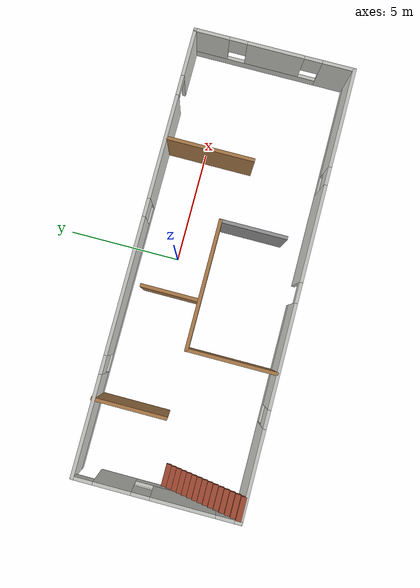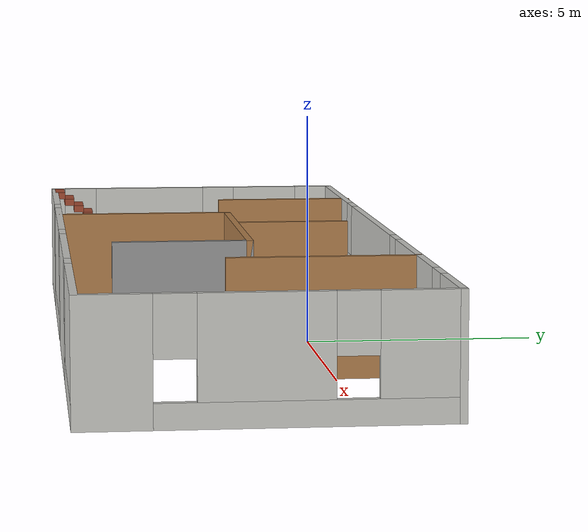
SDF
<?xml version='1.0'?>
<sdf version='1.7'>
  <model name='custom.world'>
    <pose>-0.155644 -1.8092 0 0 -0 0</pose>
    <link name='Stairs_0'>
      <visual name='Stairs_0_Visual_0'>
        <pose>-9.24082 -0.17582 0.083333 0 -0 0</pose>
        <geometry>
          <box>
            <size>1 0.233333 0.166667</size>
          </box>
        </geometry>
        <material>
          <script>
            <uri>file://media/materials/scripts/gazebo.material</uri>
            <name>Gazebo/Bricks</name>
          </script>
          <ambient>1 1 1 1</ambient>
        </material>
        <meta>
          <layer>0</layer>
        </meta>
      </visual>
      <collision name='Stairs_0_Collision_0'>
        <geometry>
          <box>
            <size>1 0.233333 0.166667</size>
          </box>
        </geometry>
        <pose>-9.24082 -0.17582 0.083333 0 -0 0</pose>
      </collision>
      <visual name='Stairs_0_Visual_1'>
        <pose>-9.24082 -0.409153 0.25 0 -0 0</pose>
        <geometry>
          <box>
            <size>1 0.233333 0.166667</size>
          </box>
        </geometry>
        <material>
          <script>
            <uri>file://media/materials/scripts/gazebo.material</uri>
            <name>Gazebo/Bricks</name>
          </script>
          <ambient>1 1 1 1</ambient>
        </material>
        <meta>
          <layer>0</layer>
        </meta>
      </visual>
      <collision name='Stairs_0_Collision_1'>
        <geometry>
          <box>
            <size>1 0.233333 0.166667</size>
          </box>
        </geometry>
        <pose>-9.24082 -0.409153 0.25 0 -0 0</pose>
      </collision>
      <visual name='Stairs_0_Visual_2'>
        <pose>-9.24082 -0.642487 0.416667 0 -0 0</pose>
        <geometry>
          <box>
            <size>1 0.233333 0.166667</size>
          </box>
        </geometry>
        <material>
          <script>
            <uri>file://media/materials/scripts/gazebo.material</uri>
            <name>Gazebo/Bricks</name>
          </script>
          <ambient>1 1 1 1</ambient>
        </material>
        <meta>
          <layer>0</layer>
        </meta>
      </visual>
      <collision name='Stairs_0_Collision_2'>
        <geometry>
          <box>
            <size>1 0.233333 0.166667</size>
          </box>
        </geometry>
        <pose>-9.24082 -0.642487 0.416667 0 -0 0</pose>
      </collision>
      <visual name='Stairs_0_Visual_3'>
        <pose>-9.24082 -0.87582 0.583333 0 -0 0</pose>
        <geometry>
          <box>
            <size>1 0.233333 0.166667</size>
          </box>
        </geometry>
        <material>
          <script>
            <uri>file://media/materials/scripts/gazebo.material</uri>
            <name>Gazebo/Bricks</name>
          </script>
          <ambient>1 1 1 1</ambient>
        </material>
        <meta>
          <layer>0</layer>
        </meta>
      </visual>
      <collision name='Stairs_0_Collision_3'>
        <geometry>
          <box>
            <size>1 0.233333 0.166667</size>
          </box>
        </geometry>
        <pose>-9.24082 -0.87582 0.583333 0 -0 0</pose>
      </collision>
      <visual name='Stairs_0_Visual_4'>
        <pose>-9.24082 -1.10915 0.75 0 -0 0</pose>
        <geometry>
          <box>
            <size>1 0.233333 0.166667</size>
          </box>
        </geometry>
        <material>
          <script>
            <uri>file://media/materials/scripts/gazebo.material</uri>
            <name>Gazebo/Bricks</name>
          </script>
          <ambient>1 1 1 1</ambient>
        </material>
        <meta>
          <layer>0</layer>
        </meta>
      </visual>
      <collision name='Stairs_0_Collision_4'>
        <geometry>
          <box>
            <size>1 0.233333 0.166667</size>
          </box>
        </geometry>
        <pose>-9.24082 -1.10915 0.75 0 -0 0</pose>
      </collision>
      <visual name='Stairs_0_Visual_5'>
        <pose>-9.24082 -1.34249 0.916667 0 -0 0</pose>
        <geometry>
          <box>
            <size>1 0.233333 0.166667</size>
          </box>
        </geometry>
        <material>
          <script>
            <uri>file://media/materials/scripts/gazebo.material</uri>
            <name>Gazebo/Bricks</name>
          </script>
          <ambient>1 1 1 1</ambient>
        </material>
        <meta>
          <layer>0</layer>
        </meta>
      </visual>
      <collision name='Stairs_0_Collision_5'>
        <geometry>
          <box>
            <size>1 0.233333 0.166667</size>
          </box>
        </geometry>
        <pose>-9.24082 -1.34249 0.916667 0 -0 0</pose>
      </collision>
      <visual name='Stairs_0_Visual_6'>
        <pose>-9.24082 -1.57582 1.08333 0 -0 0</pose>
        <geometry>
          <box>
            <size>1 0.233333 0.166667</size>
          </box>
        </geometry>
        <material>
          <script>
            <uri>file://media/materials/scripts/gazebo.material</uri>
            <name>Gazebo/Bricks</name>
          </script>
          <ambient>1 1 1 1</ambient>
        </material>
        <meta>
          <layer>0</layer>
        </meta>
      </visual>
      <collision name='Stairs_0_Collision_6'>
        <geometry>
          <box>
            <size>1 0.233333 0.166667</size>
          </box>
        </geometry>
        <pose>-9.24082 -1.57582 1.08333 0 -0 0</pose>
      </collision>
      <visual name='Stairs_0_Visual_7'>
        <pose>-9.24082 -1.80915 1.25 0 -0 0</pose>
        <geometry>
          <box>
            <size>1 0.233333 0.166667</size>
          </box>
        </geometry>
        <material>
          <script>
            <uri>file://media/materials/scripts/gazebo.material</uri>
            <name>Gazebo/Bricks</name>
          </script>
          <ambient>1 1 1 1</ambient>
        </material>
        <meta>
          <layer>0</layer>
        </meta>
      </visual>
      <collision name='Stairs_0_Collision_7'>
        <geometry>
          <box>
            <size>1 0.233333 0.166667</size>
          </box>
        </geometry>
        <pose>-9.24082 -1.80915 1.25 0 -0 0</pose>
      </collision>
      <visual name='Stairs_0_Visual_8'>
        <pose>-9.24082 -2.04249 1.41667 0 -0 0</pose>
        <geometry>
          <box>
            <size>1 0.233333 0.166667</size>
          </box>
        </geometry>
        <material>
          <script>
            <uri>file://media/materials/scripts/gazebo.material</uri>
            <name>Gazebo/Bricks</name>
          </script>
          <ambient>1 1 1 1</ambient>
        </material>
        <meta>
          <layer>0</layer>
        </meta>
      </visual>
      <collision name='Stairs_0_Collision_8'>
        <geometry>
          <box>
            <size>1 0.233333 0.166667</size>
          </box>
        </geometry>
        <pose>-9.24082 -2.04249 1.41667 0 -0 0</pose>
      </collision>
      <visual name='Stairs_0_Visual_9'>
        <pose>-9.24082 -2.27582 1.58333 0 -0 0</pose>
        <geometry>
          <box>
            <size>1 0.233333 0.166667</size>
          </box>
        </geometry>
        <material>
          <script>
            <uri>file://media/materials/scripts/gazebo.material</uri>
            <name>Gazebo/Bricks</name>
          </script>
          <ambient>1 1 1 1</ambient>
        </material>
        <meta>
          <layer>0</layer>
        </meta>
      </visual>
      <collision name='Stairs_0_Collision_9'>
        <geometry>
          <box>
            <size>1 0.233333 0.166667</size>
          </box>
        </geometry>
        <pose>-9.24082 -2.27582 1.58333 0 -0 0</pose>
      </collision>
      <visual name='Stairs_0_Visual_10'>
        <pose>-9.24082 -2.50915 1.75 0 -0 0</pose>
        <geometry>
          <box>
            <size>1 0.233333 0.166667</size>
          </box>
        </geometry>
        <material>
          <script>
            <uri>file://media/materials/scripts/gazebo.material</uri>
            <name>Gazebo/Bricks</name>
          </script>
          <ambient>1 1 1 1</ambient>
        </material>
        <meta>
          <layer>0</layer>
        </meta>
      </visual>
      <collision name='Stairs_0_Collision_10'>
        <geometry>
          <box>
            <size>1 0.233333 0.166667</size>
          </box>
        </geometry>
        <pose>-9.24082 -2.50915 1.75 0 -0 0</pose>
      </collision>
      <visual name='Stairs_0_Visual_11'>
        <pose>-9.24082 -2.74249 1.91667 0 -0 0</pose>
        <geometry>
          <box>
            <size>1 0.233333 0.166667</size>
          </box>
        </geometry>
        <material>
          <script>
            <uri>file://media/materials/scripts/gazebo.material</uri>
            <name>Gazebo/Bricks</name>
          </script>
          <ambient>1 1 1 1</ambient>
        </material>
        <meta>
          <layer>0</layer>
        </meta>
      </visual>
      <collision name='Stairs_0_Collision_11'>
        <geometry>
          <box>
            <size>1 0.233333 0.166667</size>
          </box>
        </geometry>
        <pose>-9.24082 -2.74249 1.91667 0 -0 0</pose>
      </collision>
      <visual name='Stairs_0_Visual_12'>
        <pose>-9.24082 -2.97582 2.08333 0 -0 0</pose>
        <geometry>
          <box>
            <size>1 0.233333 0.166667</size>
          </box>
        </geometry>
        <material>
          <script>
            <uri>file://media/materials/scripts/gazebo.material</uri>
            <name>Gazebo/Bricks</name>
          </script>
          <ambient>1 1 1 1</ambient>
        </material>
        <meta>
          <layer>0</layer>
        </meta>
      </visual>
      <collision name='Stairs_0_Collision_12'>
        <geometry>
          <box>
            <size>1 0.233333 0.166667</size>
          </box>
        </geometry>
        <pose>-9.24082 -2.97582 2.08333 0 -0 0</pose>
      </collision>
      <visual name='Stairs_0_Visual_13'>
        <pose>-9.24082 -3.20915 2.25 0 -0 0</pose>
        <geometry>
          <box>
            <size>1 0.233333 0.166667</size>
          </box>
        </geometry>
        <material>
          <script>
            <uri>file://media/materials/scripts/gazebo.material</uri>
            <name>Gazebo/Bricks</name>
          </script>
          <ambient>1 1 1 1</ambient>
        </material>
        <meta>
          <layer>0</layer>
        </meta>
      </visual>
      <collision name='Stairs_0_Collision_13'>
        <geometry>
          <box>
            <size>1 0.233333 0.166667</size>
          </box>
        </geometry>
        <pose>-9.24082 -3.20915 2.25 0 -0 0</pose>
      </collision>
      <visual name='Stairs_0_Visual_14'>
        <pose>-9.24082 -3.44249 2.41667 0 -0 0</pose>
        <geometry>
          <box>
            <size>1 0.233333 0.166667</size>
          </box>
        </geometry>
        <material>
          <script>
            <uri>file://media/materials/scripts/gazebo.material</uri>
            <name>Gazebo/Bricks</name>
          </script>
          <ambient>1 1 1 1</ambient>
        </material>
        <meta>
          <layer>0</layer>
        </meta>
      </visual>
      <collision name='Stairs_0_Collision_14'>
        <geometry>
          <box>
            <size>1 0.233333 0.166667</size>
          </box>
        </geometry>
        <pose>-9.24082 -3.44249 2.41667 0 -0 0</pose>
      </collision>
    </link>
    <link name='Wall_11'>
      <pose>-9.8 -0.017848 0 0 -0 -1.5708</pose>
      <visual name='Wall_11_Visual_0'>
        <pose>-3.60296 0 1.25 0 -0 0</pose>
        <geometry>
          <box>
            <size>0.044075 0.15 2.5</size>
          </box>
        </geometry>
        <material>
          <script>
            <uri>file://media/materials/scripts/gazebo.material</uri>
            <name>Gazebo/CeilingTiled</name>
          </script>
          <ambient>0.921569 0.807843 0.615686 1</ambient>
        </material>
        <meta>
          <layer>0</layer>
        </meta>
      </visual>
      <collision name='Wall_11_Collision_0'>
        <geometry>
          <box>
            <size>0.044075 0.15 2.5</size>
          </box>
        </geometry>
        <pose>-3.60296 0 1.25 0 -0 0</pose>
      </collision>
      <visual name='Wall_11_Visual_1'>
        <pose>-1.87537 0 1.25 0 -0 0</pose>
        <geometry>
          <box>
            <size>1.61112 0.15 2.5</size>
          </box>
        </geometry>
        <material>
          <script>
            <uri>file://media/materials/scripts/gazebo.material</uri>
            <name>Gazebo/CeilingTiled</name>
          </script>
          <ambient>0.921569 0.807843 0.615686 1</ambient>
        </material>
        <meta>
          <layer>0</layer>
        </meta>
      </visual>
      <collision name='Wall_11_Collision_1'>
        <geometry>
          <box>
            <size>1.61112 0.15 2.5</size>
          </box>
        </geometry>
        <pose>-1.87537 0 1.25 0 -0 0</pose>
      </collision>
      <visual name='Wall_11_Visual_2'>
        <pose>1.2776 0 0.25 0 -0 0</pose>
        <geometry>
          <box>
            <size>4.69481 0.15 0.5</size>
          </box>
        </geometry>
        <material>
          <script>
            <uri>file://media/materials/scripts/gazebo.material</uri>
            <name>Gazebo/CeilingTiled</name>
          </script>
          <ambient>0.921569 0.807843 0.615686 1</ambient>
        </material>
        <meta>
          <layer>0</layer>
        </meta>
      </visual>
      <collision name='Wall_11_Collision_2'>
        <geometry>
          <box>
            <size>4.69481 0.15 0.5</size>
          </box>
        </geometry>
        <pose>1.2776 0 0.25 0 -0 0</pose>
      </collision>
      <visual name='Wall_11_Visual_3'>
        <pose>1.10915 0 1.5 0 -0 0</pose>
        <geometry>
          <box>
            <size>2.75792 0.15 2</size>
          </box>
        </geometry>
        <material>
          <script>
            <uri>file://media/materials/scripts/gazebo.material</uri>
            <name>Gazebo/CeilingTiled</name>
          </script>
          <ambient>0.921569 0.807843 0.615686 1</ambient>
        </material>
        <meta>
          <layer>0</layer>
        </meta>
      </visual>
      <collision name='Wall_11_Collision_3'>
        <geometry>
          <box>
            <size>2.75792 0.15 2</size>
          </box>
        </geometry>
        <pose>1.10915 0 1.5 0 -0 0</pose>
      </collision>
      <visual name='Wall_11_Visual_4'>
        <pose>3.45655 0 1.5 0 -0 0</pose>
        <geometry>
          <box>
            <size>0.336893 0.15 2</size>
          </box>
        </geometry>
        <material>
          <script>
            <uri>file://media/materials/scripts/gazebo.material</uri>
            <name>Gazebo/CeilingTiled</name>
          </script>
          <ambient>0.921569 0.807843 0.615686 1</ambient>
        </material>
        <meta>
          <layer>0</layer>
        </meta>
      </visual>
      <collision name='Wall_11_Collision_4'>
        <geometry>
          <box>
            <size>0.336893 0.15 2</size>
          </box>
        </geometry>
        <pose>3.45655 0 1.5 0 -0 0</pose>
      </collision>
      <visual name='Wall_11_Visual_5'>
        <pose>-0.66981 0 1.9 0 -0 0</pose>
        <geometry>
          <box>
            <size>0.8 0.15 1.2</size>
          </box>
        </geometry>
        <material>
          <script>
            <uri>file://media/materials/scripts/gazebo.material</uri>
            <name>Gazebo/CeilingTiled</name>
          </script>
          <ambient>0.921569 0.807843 0.615686 1</ambient>
        </material>
        <meta>
          <layer>0</layer>
        </meta>
      </visual>
      <collision name='Wall_11_Collision_5'>
        <geometry>
          <box>
            <size>0.8 0.15 1.2</size>
          </box>
        </geometry>
        <pose>-0.66981 0 1.9 0 -0 0</pose>
      </collision>
      <visual name='Wall_11_Visual_6'>
        <pose>2.88811 0 1.9 0 -0 0</pose>
        <geometry>
          <box>
            <size>0.8 0.15 1.2</size>
          </box>
        </geometry>
        <material>
          <script>
            <uri>file://media/materials/scripts/gazebo.material</uri>
            <name>Gazebo/CeilingTiled</name>
          </script>
          <ambient>0.921569 0.807843 0.615686 1</ambient>
        </material>
        <meta>
          <layer>0</layer>
        </meta>
      </visual>
      <collision name='Wall_11_Collision_6'>
        <geometry>
          <box>
            <size>0.8 0.15 1.2</size>
          </box>
        </geometry>
        <pose>2.88811 0 1.9 0 -0 0</pose>
      </collision>
      <visual name='Wall_11_Visual_7'>
        <pose>-3.13092 0 2.25 0 -0 0</pose>
        <geometry>
          <box>
            <size>0.9 0.15 0.5</size>
          </box>
        </geometry>
        <material>
          <script>
            <uri>file://media/materials/scripts/gazebo.material</uri>
            <name>Gazebo/CeilingTiled</name>
          </script>
          <ambient>0.921569 0.807843 0.615686 1</ambient>
        </material>
        <meta>
          <layer>0</layer>
        </meta>
      </visual>
      <collision name='Wall_11_Collision_7'>
        <geometry>
          <box>
            <size>0.9 0.15 0.5</size>
          </box>
        </geometry>
        <pose>-3.13092 0 2.25 0 -0 0</pose>
      </collision>
    </link>
    <link name='Wall_12'>
      <pose>-0 -3.56785 0 0 -0 0</pose>
      <visual name='Wall_12_Visual_0'>
        <pose>-7.8987 0 1.25 0 -0 0</pose>
        <geometry>
          <box>
            <size>3.95261 0.15 2.5</size>
          </box>
        </geometry>
        <material>
          <script>
            <uri>file://media/materials/scripts/gazebo.material</uri>
            <name>Gazebo/CeilingTiled</name>
          </script>
          <ambient>0.921569 0.807843 0.615686 1</ambient>
        </material>
        <meta>
          <layer>0</layer>
        </meta>
      </visual>
      <collision name='Wall_12_Collision_0'>
        <geometry>
          <box>
            <size>3.95261 0.15 2.5</size>
          </box>
        </geometry>
        <pose>-7.8987 0 1.25 0 -0 0</pose>
      </collision>
      <visual name='Wall_12_Visual_1'>
        <pose>2.44773 0 1.25 0 -0 0</pose>
        <geometry>
          <box>
            <size>4.28624 0.15 2.5</size>
          </box>
        </geometry>
        <material>
          <script>
            <uri>file://media/materials/scripts/gazebo.material</uri>
            <name>Gazebo/CeilingTiled</name>
          </script>
          <ambient>0.921569 0.807843 0.615686 1</ambient>
        </material>
        <meta>
          <layer>0</layer>
        </meta>
      </visual>
      <collision name='Wall_12_Collision_1'>
        <geometry>
          <box>
            <size>4.28624 0.15 2.5</size>
          </box>
        </geometry>
        <pose>2.44773 0 1.25 0 -0 0</pose>
      </collision>
      <visual name='Wall_12_Visual_2'>
        <pose>-3.25889 0 0.25 0 -0 0</pose>
        <geometry>
          <box>
            <size>5.327 0.15 0.5</size>
          </box>
        </geometry>
        <material>
          <script>
            <uri>file://media/materials/scripts/gazebo.material</uri>
            <name>Gazebo/CeilingTiled</name>
          </script>
          <ambient>0.921569 0.807843 0.615686 1</ambient>
        </material>
        <meta>
          <layer>0</layer>
        </meta>
      </visual>
      <collision name='Wall_12_Collision_2'>
        <geometry>
          <box>
            <size>5.327 0.15 0.5</size>
          </box>
        </geometry>
        <pose>-3.25889 0 0.25 0 -0 0</pose>
      </collision>
      <visual name='Wall_12_Visual_3'>
        <pose>7.23292 0 0.25 0 -0 0</pose>
        <geometry>
          <box>
            <size>5.28415 0.15 0.5</size>
          </box>
        </geometry>
        <material>
          <script>
            <uri>file://media/materials/scripts/gazebo.material</uri>
            <name>Gazebo/CeilingTiled</name>
          </script>
          <ambient>0.921569 0.807843 0.615686 1</ambient>
        </material>
        <meta>
          <layer>0</layer>
        </meta>
      </visual>
      <collision name='Wall_12_Collision_3'>
        <geometry>
          <box>
            <size>5.28415 0.15 0.5</size>
          </box>
        </geometry>
        <pose>7.23292 0 0.25 0 -0 0</pose>
      </collision>
      <visual name='Wall_12_Visual_4'>
        <pose>-2.85889 0 1.5 0 -0 0</pose>
        <geometry>
          <box>
            <size>4.527 0.15 2</size>
          </box>
        </geometry>
        <material>
          <script>
            <uri>file://media/materials/scripts/gazebo.material</uri>
            <name>Gazebo/CeilingTiled</name>
          </script>
          <ambient>0.921569 0.807843 0.615686 1</ambient>
        </material>
        <meta>
          <layer>0</layer>
        </meta>
      </visual>
      <collision name='Wall_12_Collision_4'>
        <geometry>
          <box>
            <size>4.527 0.15 2</size>
          </box>
        </geometry>
        <pose>-2.85889 0 1.5 0 -0 0</pose>
      </collision>
      <visual name='Wall_12_Visual_5'>
        <pose>-2.85889 0 1.5 0 -0 0</pose>
        <geometry>
          <box>
            <size>4.527 0.15 2</size>
          </box>
        </geometry>
        <material>
          <script>
            <uri>file://media/materials/scripts/gazebo.material</uri>
            <name>Gazebo/CeilingTiled</name>
          </script>
          <ambient>0.921569 0.807843 0.615686 1</ambient>
        </material>
        <meta>
          <layer>0</layer>
        </meta>
      </visual>
      <collision name='Wall_12_Collision_5'>
        <geometry>
          <box>
            <size>4.527 0.15 2</size>
          </box>
        </geometry>
        <pose>-2.85889 0 1.5 0 -0 0</pose>
      </collision>
      <visual name='Wall_12_Visual_6'>
        <pose>7.63292 0 1.5 0 -0 0</pose>
        <geometry>
          <box>
            <size>4.48415 0.15 2</size>
          </box>
        </geometry>
        <material>
          <script>
            <uri>file://media/materials/scripts/gazebo.material</uri>
            <name>Gazebo/CeilingTiled</name>
          </script>
          <ambient>0.921569 0.807843 0.615686 1</ambient>
        </material>
        <meta>
          <layer>0</layer>
        </meta>
      </visual>
      <collision name='Wall_12_Collision_6'>
        <geometry>
          <box>
            <size>4.48415 0.15 2</size>
          </box>
        </geometry>
        <pose>7.63292 0 1.5 0 -0 0</pose>
      </collision>
      <visual name='Wall_12_Visual_7'>
        <pose>-5.52239 0 1.9 0 -0 0</pose>
        <geometry>
          <box>
            <size>0.8 0.15 1.2</size>
          </box>
        </geometry>
        <material>
          <script>
            <uri>file://media/materials/scripts/gazebo.material</uri>
            <name>Gazebo/CeilingTiled</name>
          </script>
          <ambient>0.921569 0.807843 0.615686 1</ambient>
        </material>
        <meta>
          <layer>0</layer>
        </meta>
      </visual>
      <collision name='Wall_12_Collision_7'>
        <geometry>
          <box>
            <size>0.8 0.15 1.2</size>
          </box>
        </geometry>
        <pose>-5.52239 0 1.9 0 -0 0</pose>
      </collision>
      <visual name='Wall_12_Visual_8'>
        <pose>4.99085 0 1.9 0 -0 0</pose>
        <geometry>
          <box>
            <size>0.8 0.15 1.2</size>
          </box>
        </geometry>
        <material>
          <script>
            <uri>file://media/materials/scripts/gazebo.material</uri>
            <name>Gazebo/CeilingTiled</name>
          </script>
          <ambient>0.921569 0.807843 0.615686 1</ambient>
        </material>
        <meta>
          <layer>0</layer>
        </meta>
      </visual>
      <collision name='Wall_12_Collision_8'>
        <geometry>
          <box>
            <size>0.8 0.15 1.2</size>
          </box>
        </geometry>
        <pose>4.99085 0 1.9 0 -0 0</pose>
      </collision>
      <visual name='Wall_12_Visual_9'>
        <pose>-0.145393 0 2.25 0 -0 0</pose>
        <geometry>
          <box>
            <size>0.9 0.15 0.5</size>
          </box>
        </geometry>
        <material>
          <script>
            <uri>file://media/materials/scripts/gazebo.material</uri>
            <name>Gazebo/CeilingTiled</name>
          </script>
          <ambient>0.921569 0.807843 0.615686 1</ambient>
        </material>
        <meta>
          <layer>0</layer>
        </meta>
      </visual>
      <collision name='Wall_12_Collision_9'>
        <geometry>
          <box>
            <size>0.9 0.15 0.5</size>
          </box>
        </geometry>
        <pose>-0.145393 0 2.25 0 -0 0</pose>
      </collision>
      <visual name='Wall_12_Visual_10'>
        <pose>-0.145393 0 2.25 0 -0 0</pose>
        <geometry>
          <box>
            <size>0.9 0.15 0.5</size>
          </box>
        </geometry>
        <material>
          <script>
            <uri>file://media/materials/scripts/gazebo.material</uri>
            <name>Gazebo/CeilingTiled</name>
          </script>
          <ambient>0.921569 0.807843 0.615686 1</ambient>
        </material>
        <meta>
          <layer>0</layer>
        </meta>
      </visual>
      <collision name='Wall_12_Collision_10'>
        <geometry>
          <box>
            <size>0.9 0.15 0.5</size>
          </box>
        </geometry>
        <pose>-0.145393 0 2.25 0 -0 0</pose>
      </collision>
    </link>
    <link name='Wall_13'>
      <pose>9.8 -0.017848 0 0 -0 1.5708</pose>
      <visual name='Wall_13_Visual_0'>
        <pose>-2.8814 0 1.25 0 -0 0</pose>
        <geometry>
          <box>
            <size>1.4872 0.15 2.5</size>
          </box>
        </geometry>
        <material>
          <script>
            <uri>file://media/materials/scripts/gazebo.material</uri>
            <name>Gazebo/CeilingTiled</name>
          </script>
          <ambient>0.921569 0.807843 0.615686 1</ambient>
        </material>
        <meta>
          <layer>0</layer>
        </meta>
      </visual>
      <collision name='Wall_13_Collision_0'>
        <geometry>
          <box>
            <size>1.4872 0.15 2.5</size>
          </box>
        </geometry>
        <pose>-2.8814 0 1.25 0 -0 0</pose>
      </collision>
      <visual name='Wall_13_Visual_1'>
        <pose>0.743599 0 0.25 0 -0 0</pose>
        <geometry>
          <box>
            <size>5.7628 0.15 0.5</size>
          </box>
        </geometry>
        <material>
          <script>
            <uri>file://media/materials/scripts/gazebo.material</uri>
            <name>Gazebo/CeilingTiled</name>
          </script>
          <ambient>0.921569 0.807843 0.615686 1</ambient>
        </material>
        <meta>
          <layer>0</layer>
        </meta>
      </visual>
      <collision name='Wall_13_Collision_1'>
        <geometry>
          <box>
            <size>5.7628 0.15 0.5</size>
          </box>
        </geometry>
        <pose>0.743599 0 0.25 0 -0 0</pose>
      </collision>
      <visual name='Wall_13_Visual_2'>
        <pose>-0.06585 0 1.5 0 -0 0</pose>
        <geometry>
          <box>
            <size>2.54391 0.15 2</size>
          </box>
        </geometry>
        <material>
          <script>
            <uri>file://media/materials/scripts/gazebo.material</uri>
            <name>Gazebo/CeilingTiled</name>
          </script>
          <ambient>0.921569 0.807843 0.615686 1</ambient>
        </material>
        <meta>
          <layer>0</layer>
        </meta>
      </visual>
      <collision name='Wall_13_Collision_2'>
        <geometry>
          <box>
            <size>2.54391 0.15 2</size>
          </box>
        </geometry>
        <pose>-0.06585 0 1.5 0 -0 0</pose>
      </collision>
      <visual name='Wall_13_Visual_3'>
        <pose>2.81555 0 1.5 0 -0 0</pose>
        <geometry>
          <box>
            <size>1.6189 0.15 2</size>
          </box>
        </geometry>
        <material>
          <script>
            <uri>file://media/materials/scripts/gazebo.material</uri>
            <name>Gazebo/CeilingTiled</name>
          </script>
          <ambient>0.921569 0.807843 0.615686 1</ambient>
        </material>
        <meta>
          <layer>0</layer>
        </meta>
      </visual>
      <collision name='Wall_13_Collision_3'>
        <geometry>
          <box>
            <size>1.6189 0.15 2</size>
          </box>
        </geometry>
        <pose>2.81555 0 1.5 0 -0 0</pose>
      </collision>
      <visual name='Wall_13_Visual_4'>
        <pose>-1.7378 0 1.9 0 -0 0</pose>
        <geometry>
          <box>
            <size>0.8 0.15 1.2</size>
          </box>
        </geometry>
        <material>
          <script>
            <uri>file://media/materials/scripts/gazebo.material</uri>
            <name>Gazebo/CeilingTiled</name>
          </script>
          <ambient>0.921569 0.807843 0.615686 1</ambient>
        </material>
        <meta>
          <layer>0</layer>
        </meta>
      </visual>
      <collision name='Wall_13_Collision_4'>
        <geometry>
          <box>
            <size>0.8 0.15 1.2</size>
          </box>
        </geometry>
        <pose>-1.7378 0 1.9 0 -0 0</pose>
      </collision>
      <visual name='Wall_13_Visual_5'>
        <pose>1.6061 0 1.9 0 -0 0</pose>
        <geometry>
          <box>
            <size>0.8 0.15 1.2</size>
          </box>
        </geometry>
        <material>
          <script>
            <uri>file://media/materials/scripts/gazebo.material</uri>
            <name>Gazebo/CeilingTiled</name>
          </script>
          <ambient>0.921569 0.807843 0.615686 1</ambient>
        </material>
        <meta>
          <layer>0</layer>
        </meta>
      </visual>
      <collision name='Wall_13_Collision_5'>
        <geometry>
          <box>
            <size>0.8 0.15 1.2</size>
          </box>
        </geometry>
        <pose>1.6061 0 1.9 0 -0 0</pose>
      </collision>
    </link>
    <link name='Wall_14'>
      <pose>-0 3.53215 0 0 -0 3.14159</pose>
      <visual name='Wall_14_Visual_0'>
        <pose>-8.78148 0 1.25 0 -0 0</pose>
        <geometry>
          <box>
            <size>2.18705 0.15 2.5</size>
          </box>
        </geometry>
        <material>
          <script>
            <uri>file://media/materials/scripts/gazebo.material</uri>
            <name>Gazebo/CeilingTiled</name>
          </script>
          <ambient>0.921569 0.807843 0.615686 1</ambient>
        </material>
        <meta>
          <layer>0</layer>
        </meta>
      </visual>
      <collision name='Wall_14_Collision_0'>
        <geometry>
          <box>
            <size>2.18705 0.15 2.5</size>
          </box>
        </geometry>
        <pose>-8.78148 0 1.25 0 -0 0</pose>
      </collision>
      <visual name='Wall_14_Visual_1'>
        <pose>-4.45757 0 1.25 0 -0 0</pose>
        <geometry>
          <box>
            <size>4.66076 0.15 2.5</size>
          </box>
        </geometry>
        <material>
          <script>
            <uri>file://media/materials/scripts/gazebo.material</uri>
            <name>Gazebo/CeilingTiled</name>
          </script>
          <ambient>0.921569 0.807843 0.615686 1</ambient>
        </material>
        <meta>
          <layer>0</layer>
        </meta>
      </visual>
      <collision name='Wall_14_Collision_1'>
        <geometry>
          <box>
            <size>4.66076 0.15 2.5</size>
          </box>
        </geometry>
        <pose>-4.45757 0 1.25 0 -0 0</pose>
      </collision>
      <visual name='Wall_14_Visual_2'>
        <pose>3.8739 0 0.25 0 -0 0</pose>
        <geometry>
          <box>
            <size>12.0022 0.15 0.5</size>
          </box>
        </geometry>
        <material>
          <script>
            <uri>file://media/materials/scripts/gazebo.material</uri>
            <name>Gazebo/CeilingTiled</name>
          </script>
          <ambient>0.921569 0.807843 0.615686 1</ambient>
        </material>
        <meta>
          <layer>0</layer>
        </meta>
      </visual>
      <collision name='Wall_14_Collision_2'>
        <geometry>
          <box>
            <size>12.0022 0.15 0.5</size>
          </box>
        </geometry>
        <pose>3.8739 0 0.25 0 -0 0</pose>
      </collision>
      <visual name='Wall_14_Visual_3'>
        <pose>1.68359 0 1.5 0 -0 0</pose>
        <geometry>
          <box>
            <size>6.02157 0.15 2</size>
          </box>
        </geometry>
        <material>
          <script>
            <uri>file://media/materials/scripts/gazebo.material</uri>
            <name>Gazebo/CeilingTiled</name>
          </script>
          <ambient>0.921569 0.807843 0.615686 1</ambient>
        </material>
        <meta>
          <layer>0</layer>
        </meta>
      </visual>
      <collision name='Wall_14_Collision_3'>
        <geometry>
          <box>
            <size>6.02157 0.15 2</size>
          </box>
        </geometry>
        <pose>1.68359 0 1.5 0 -0 0</pose>
      </collision>
      <visual name='Wall_14_Visual_4'>
        <pose>7.68469 0 1.5 0 -0 0</pose>
        <geometry>
          <box>
            <size>4.38063 0.15 2</size>
          </box>
        </geometry>
        <material>
          <script>
            <uri>file://media/materials/scripts/gazebo.material</uri>
            <name>Gazebo/CeilingTiled</name>
          </script>
          <ambient>0.921569 0.807843 0.615686 1</ambient>
        </material>
        <meta>
          <layer>0</layer>
        </meta>
      </visual>
      <collision name='Wall_14_Collision_4'>
        <geometry>
          <box>
            <size>4.38063 0.15 2</size>
          </box>
        </geometry>
        <pose>7.68469 0 1.5 0 -0 0</pose>
      </collision>
      <visual name='Wall_14_Visual_5'>
        <pose>-1.7272 0 1.9 0 -0 0</pose>
        <geometry>
          <box>
            <size>0.8 0.15 1.2</size>
          </box>
        </geometry>
        <material>
          <script>
            <uri>file://media/materials/scripts/gazebo.material</uri>
            <name>Gazebo/CeilingTiled</name>
          </script>
          <ambient>0.921569 0.807843 0.615686 1</ambient>
        </material>
        <meta>
          <layer>0</layer>
        </meta>
      </visual>
      <collision name='Wall_14_Collision_5'>
        <geometry>
          <box>
            <size>0.8 0.15 1.2</size>
          </box>
        </geometry>
        <pose>-1.7272 0 1.9 0 -0 0</pose>
      </collision>
      <visual name='Wall_14_Visual_6'>
        <pose>5.09437 0 1.9 0 -0 0</pose>
        <geometry>
          <box>
            <size>0.8 0.15 1.2</size>
          </box>
        </geometry>
        <material>
          <script>
            <uri>file://media/materials/scripts/gazebo.material</uri>
            <name>Gazebo/CeilingTiled</name>
          </script>
          <ambient>0.921569 0.807843 0.615686 1</ambient>
        </material>
        <meta>
          <layer>0</layer>
        </meta>
      </visual>
      <collision name='Wall_14_Collision_6'>
        <geometry>
          <box>
            <size>0.8 0.15 1.2</size>
          </box>
        </geometry>
        <pose>5.09437 0 1.9 0 -0 0</pose>
      </collision>
      <visual name='Wall_14_Visual_7'>
        <pose>-7.23795 0 2.25 0 -0 0</pose>
        <geometry>
          <box>
            <size>0.9 0.15 0.5</size>
          </box>
        </geometry>
        <material>
          <script>
            <uri>file://media/materials/scripts/gazebo.material</uri>
            <name>Gazebo/CeilingTiled</name>
          </script>
          <ambient>0.921569 0.807843 0.615686 1</ambient>
        </material>
        <meta>
          <layer>0</layer>
        </meta>
      </visual>
      <collision name='Wall_14_Collision_7'>
        <geometry>
          <box>
            <size>0.9 0.15 0.5</size>
          </box>
        </geometry>
        <pose>-7.23795 0 2.25 0 -0 0</pose>
      </collision>
    </link>
    <link name='Wall_16'>
      <collision name='Wall_16_Collision'>
        <geometry>
          <box>
            <size>3.25 0.15 2.5</size>
          </box>
        </geometry>
        <pose>0 0 1.25 0 -0 0</pose>
      </collision>
      <visual name='Wall_16_Visual'>
        <pose>0 0 1.25 0 -0 0</pose>
        <geometry>
          <box>
            <size>3.25 0.15 2.5</size>
          </box>
        </geometry>
        <material>
          <script>
            <uri>file://media/materials/scripts/gazebo.material</uri>
            <name>Gazebo/Wood</name>
          </script>
          <ambient>1 1 1 1</ambient>
        </material>
        <meta>
          <layer>0</layer>
        </meta>
      </visual>
      <pose>-6.53894 2.01785 0 0 -0 -1.5708</pose>
    </link>
    <link name='Wall_18'>
      <collision name='Wall_18_Collision'>
        <geometry>
          <box>
            <size>4 0.15 2.5</size>
          </box>
        </geometry>
        <pose>0 0 1.25 0 -0 0</pose>
      </collision>
      <visual name='Wall_18_Visual'>
        <pose>0 0 1.25 0 -0 0</pose>
        <geometry>
          <box>
            <size>4 0.15 2.5</size>
          </box>
        </geometry>
        <material>
          <script>
            <uri>file://media/materials/scripts/gazebo.material</uri>
            <name>Gazebo/Wood</name>
          </script>
          <ambient>1 1 1 1</ambient>
        </material>
        <meta>
          <layer>0</layer>
        </meta>
      </visual>
      <pose>-3.62305 -1.56948 0 0 -0 1.5708</pose>
    </link>
    <link name='Wall_19'>
      <collision name='Wall_19_Collision'>
        <geometry>
          <box>
            <size>5.75 0.15 2.5</size>
          </box>
        </geometry>
        <pose>0 0 1.25 0 -0 0</pose>
      </collision>
      <visual name='Wall_19_Visual'>
        <pose>0 0 1.25 0 -0 0</pose>
        <geometry>
          <box>
            <size>5.75 0.15 2.5</size>
          </box>
        </geometry>
        <material>
          <script>
            <uri>file://media/materials/scripts/gazebo.material</uri>
            <name>Gazebo/Wood</name>
          </script>
          <ambient>1 1 1 1</ambient>
        </material>
        <meta>
          <layer>0</layer>
        </meta>
      </visual>
      <pose>-0.823055 0.355518 0 0 -0 0</pose>
    </link>
    <link name='Wall_20'>
      <collision name='Wall_20_Collision'>
        <geometry>
          <box>
            <size>3 0.15 2.5</size>
          </box>
        </geometry>
        <pose>0 0 1.25 0 -0 0</pose>
      </collision>
      <visual name='Wall_20_Visual'>
        <pose>0 0 1.25 0 -0 0</pose>
        <geometry>
          <box>
            <size>3 0.15 2.5</size>
          </box>
        </geometry>
        <material>
          <script>
            <uri>file://media/materials/scripts/gazebo.material</uri>
            <name>Gazebo/Grey</name>
          </script>
          <ambient>1 1 1 1</ambient>
        </material>
        <meta>
          <layer>0</layer>
        </meta>
      </visual>
      <pose>1.97694 -1.06948 0 0 -0 -1.5708</pose>
    </link>
    <link name='Wall_22'>
      <collision name='Wall_22_Collision'>
        <geometry>
          <box>
            <size>2.5 0.15 2.5</size>
          </box>
        </geometry>
        <pose>0 0 1.25 0 -0 0</pose>
      </collision>
      <visual name='Wall_22_Visual'>
        <pose>0 0 1.25 0 -0 0</pose>
        <geometry>
          <box>
            <size>2.5 0.15 2.5</size>
          </box>
        </geometry>
        <material>
          <script>
            <uri>file://media/materials/scripts/gazebo.material</uri>
            <name>Gazebo/Wood</name>
          </script>
          <ambient>1 1 1 1</ambient>
        </material>
        <meta>
          <layer>0</layer>
        </meta>
      </visual>
      <pose>-1.50971 1.66645 0 0 -0 1.5708</pose>
    </link>
    <link name='Wall_24'>
      <collision name='Wall_24_Collision'>
        <geometry>
          <box>
            <size>4 0.15 2.5</size>
          </box>
        </geometry>
        <pose>0 0 1.25 0 -0 0</pose>
      </collision>
      <visual name='Wall_24_Visual'>
        <pose>0 0 1.25 0 -0 0</pose>
        <geometry>
          <box>
            <size>4 0.15 2.5</size>
          </box>
        </geometry>
        <material>
          <script>
            <uri>file://media/materials/scripts/gazebo.material</uri>
            <name>Gazebo/Wood</name>
          </script>
          <ambient>1 1 1 1</ambient>
        </material>
        <meta>
          <layer>0</layer>
        </meta>
      </visual>
      <pose>4.85709 1.58935 0 0 -0 -1.5708</pose>
    </link>
    <static>1</static>
  </model>
</sdf>
